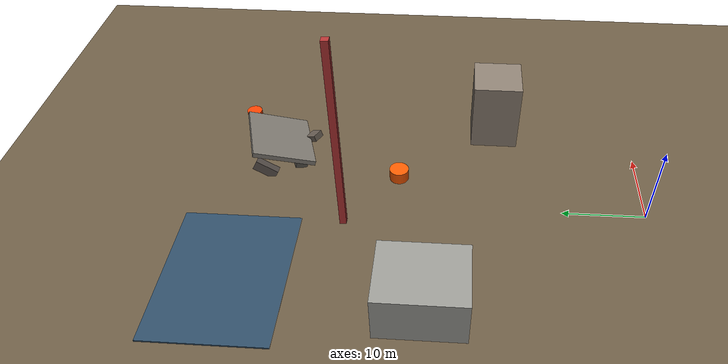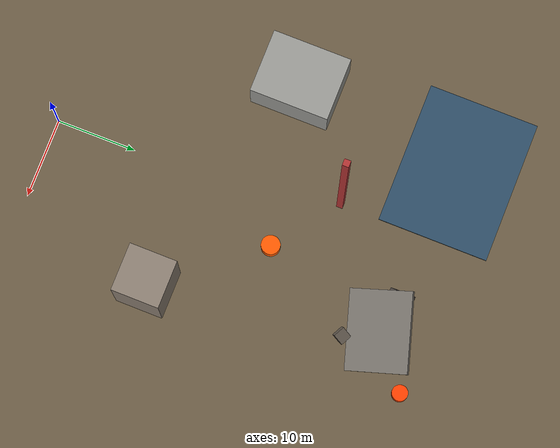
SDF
<sdf version="1.9">
 <world name="disaster">
  <physics name="1ms" type="ignore">
   <max_step_size>0.001</max_step_size>
   <real_time_factor>1.0</real_time_factor>
  </physics>
  <plugin filename="gz-sim-physics-system" name="gz::sim::systems::Physics"/>
  <plugin filename="gz-sim-sensors-system" name="gz::sim::systems::Sensors">
   <render_engine>ogre2</render_engine>
  </plugin>
  <plugin filename="gz-sim-user-commands-system" name="gz::sim::systems::UserCommands"/>
  <plugin filename="gz-sim-scene-broadcaster-system" name="gz::sim::systems::SceneBroadcaster"/>
  <plugin filename="gz-sim-imu-system" name="gz::sim::systems::Imu"/>
  <plugin filename="gz-sim-navsat-system" name="gz::sim::systems::NavSat"/>
  <plugin filename="gz-sim-air-pressure-system" name="gz::sim::systems::AirPressure"/>
  <scene><ambient>0.8 0.8 0.8</ambient><background>0.7 0.75 0.8</background></scene>
  <atmosphere type="adiabatic"><temperature>293</temperature></atmosphere>
  <spherical_coordinates>
   <latitude_deg>-35.363262</latitude_deg>
   <longitude_deg>149.165237</longitude_deg>
   <elevation>584</elevation>
   <heading_deg>0</heading_deg>
   <surface_model>EARTH_WGS84</surface_model>
  </spherical_coordinates>
  <light type="directional" name="sun">
   <pose>0 0 50 0 0 0</pose>
   <diffuse>0.9 0.9 0.85 1</diffuse>
   <specular>0.3 0.3 0.3 1</specular>
   <direction>-0.4 0.2 -0.9</direction>
  </light>
  <frame name="drone_spawn"><pose>0 0 0 0 0 1.5708</pose></frame>
  <model name="ground">
   <static>true</static>
   <link name="link">
    <collision name="collision">
     <geometry><plane><normal>0 0 1</normal><size>400 400</size></plane></geometry>
    </collision>
    <visual name="visual">
     <geometry><plane><normal>0 0 1</normal><size>400 400</size></plane></geometry>
     <material><ambient>0.42 0.36 0.27 1</ambient><diffuse>0.42 0.36 0.27 1</diffuse></material>
    </visual>
   </link>
  </model>
  <model name="building_a">
   <static>true</static>
   <pose>-15 26 3 0 0 0</pose>
   <link name="link">
    <collision name="c"><geometry><box><size>8 10 6</size></box></geometry></collision>
    <visual name="v">
     <geometry><box><size>8 10 6</size></box></geometry>
     <material><diffuse>0.6 0.6 0.58 1</diffuse></material>
    </visual>
   </link>
  </model>
  <model name="collapsed_b">
   <static>true</static>
   <pose>10 46 1.5 0.35 0.1 0.3</pose>
   <link name="slab">
    <collision name="c"><geometry><box><size>10 8 0.6</size></box></geometry></collision>
    <visual name="v">
     <geometry><box><size>10 8 0.6</size></box></geometry>
     <material><diffuse>0.5 0.48 0.45 1</diffuse></material>
    </visual>
   </link>
  </model>
  <model name="rubble_b">
   <static>true</static>
   <pose>10 46 0 0 0 0</pose>
   <link name="link">
    <collision name="r1">
     <pose>-3 -3 0.5 0.3 0 0.4</pose>
     <geometry><box><size>2 1.5 1</size></box></geometry>
    </collision>
    <visual name="r1">
     <pose>-3 -3 0.5 0.3 0 0.4</pose>
     <geometry><box><size>2 1.5 1</size></box></geometry>
     <material><diffuse>0.35 0.33 0.3 1</diffuse></material>
    </visual>
    <collision name="r2">
     <pose>2 -4 0.4 0 0.4 1.1</pose>
     <geometry><box><size>1.5 1.5 0.8</size></box></geometry>
    </collision>
    <visual name="r2">
     <pose>2 -4 0.4 0 0.4 1.1</pose>
     <geometry><box><size>1.5 1.5 0.8</size></box></geometry>
     <material><diffuse>0.4 0.36 0.32 1</diffuse></material>
    </visual>
    <collision name="r3">
     <pose>-5 1 0.6 0.5 0.2 0</pose>
     <geometry><box><size>1.2 3 1.2</size></box></geometry>
    </collision>
    <visual name="r3">
     <pose>-5 1 0.6 0.5 0.2 0</pose>
     <geometry><box><size>1.2 3 1.2</size></box></geometry>
     <material><diffuse>0.33 0.3 0.28 1</diffuse></material>
    </visual>
   </link>
  </model>
  <model name="building_c">
   <static>true</static>
   <pose>15 18 4.5 0 0 0</pose>
   <link name="link">
    <collision name="c"><geometry><box><size>6 6 9</size></box></geometry></collision>
    <visual name="v">
     <geometry><box><size>6 6 9</size></box></geometry>
     <material><diffuse>0.55 0.5 0.45 1</diffuse></material>
    </visual>
   </link>
  </model>
  <model name="mast">
   <static>true</static>
   <pose>-3 36 12.5 0 0 0</pose>
   <link name="link">
    <collision name="c"><geometry><box><size>0.8 0.8 25</size></box></geometry></collision>
    <visual name="v">
     <geometry><box><size>0.8 0.8 25</size></box></geometry>
     <material><diffuse>0.7 0.2 0.2 1</diffuse></material>
    </visual>
   </link>
  </model>
  <model name="flood">
   <static>true</static>
   <pose>-12 48 0.1 0 0 0</pose>
   <link name="link">
    <visual name="v">
     <geometry><box><size>18 14 0.2</size></box></geometry>
     <material>
      <ambient>0.18 0.3 0.4 1</ambient>
      <diffuse>0.18 0.3 0.4 0.9</diffuse>
      <specular>0.6 0.6 0.6 1</specular>
     </material>
     <plugin filename="gz-sim-thermal-system" name="gz::sim::systems::Thermal">
      <temperature>285</temperature>
     </plugin>
    </visual>
   </link>
  </model>
  <model name="fire_1">
   <static>true</static>
   <pose>5 30 0.75 0 0 0</pose>
   <link name="link">
    <visual name="v">
     <geometry><cylinder><radius>1.2</radius><length>1.5</length></cylinder></geometry>
     <material><ambient>1 0.35 0 1</ambient><diffuse>1 0.35 0 1</diffuse><emissive>1 0.3 0 1</emissive></material>
     <plugin filename="gz-sim-thermal-system" name="gz::sim::systems::Thermal">
      <temperature>550</temperature>
     </plugin>
    </visual>
   </link>
  </model>
  <model name="fire_2">
   <static>true</static>
   <pose>16 51 0.6 0 0 0</pose>
   <link name="link">
    <visual name="v">
     <geometry><cylinder><radius>1.0</radius><length>1.2</length></cylinder></geometry>
     <material><ambient>1 0.25 0 1</ambient><diffuse>1 0.25 0 1</diffuse><emissive>1 0.2 0 1</emissive></material>
     <plugin filename="gz-sim-thermal-system" name="gz::sim::systems::Thermal">
      <temperature>520</temperature>
     </plugin>
    </visual>
   </link>
  </model>
 </world>
</sdf>
